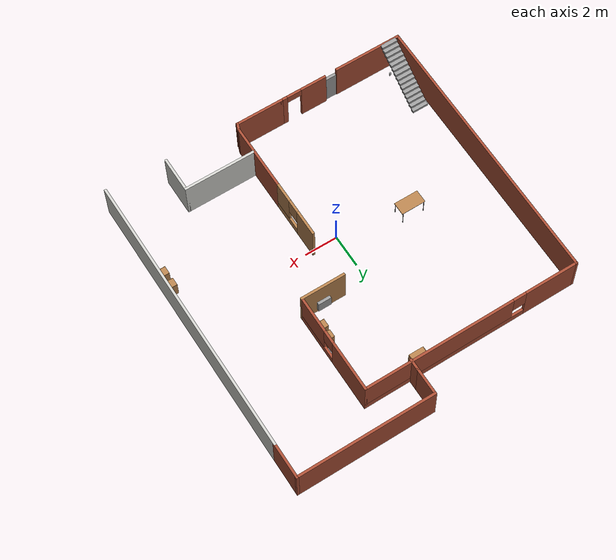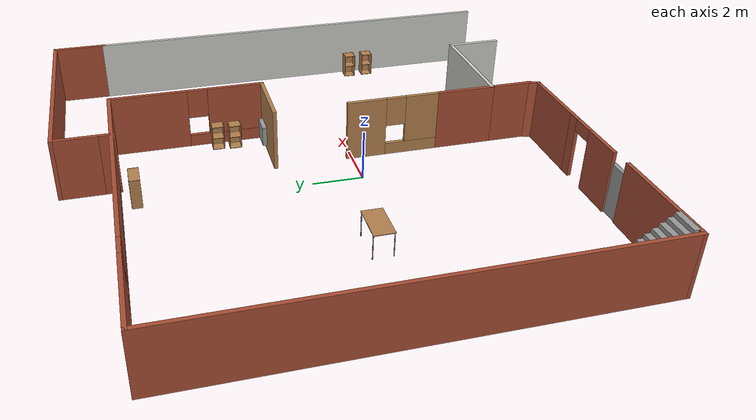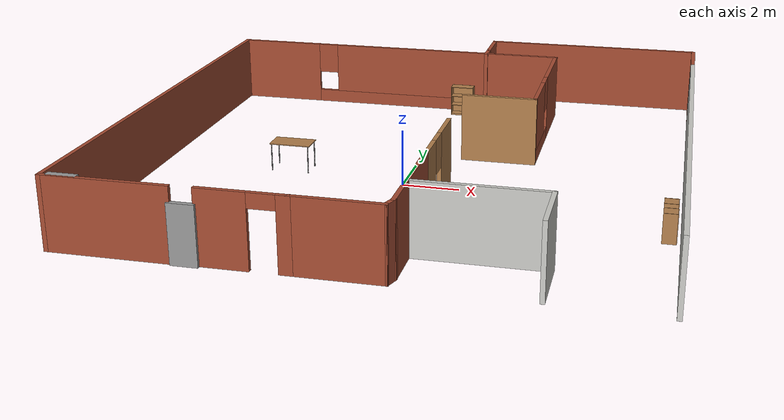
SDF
<sdf version="1.7">
 <world name="default">
  <light name="sun" type="directional">
   <pose>0 0 10 0 -0 0</pose>
   <diffuse>0.8 0.8 0.8 1</diffuse>
   <specular>0.2 0.2 0.2 1</specular>
   <attenuation>
    <range>1000</range>
    <constant>0.9</constant>
    <linear>0.01</linear>
    <quadratic>0.001</quadratic>
   </attenuation>
   <direction>-0.5 0.1 -0.9</direction>
   <spot><inner_angle>0</inner_angle><outer_angle>0</outer_angle><falloff>0</falloff></spot>
  </light>
  <gravity>0 0 -9.8</gravity>
  <magnetic_field>6e-06 2.3e-05 -4.2e-05</magnetic_field>
  <atmosphere type="adiabatic"/>
  <physics type="ode">
   <max_step_size>0.001</max_step_size>
   <real_time_factor>1</real_time_factor>
   <real_time_update_rate>1000</real_time_update_rate>
  </physics>
  <scene><ambient>0.4 0.4 0.4 1</ambient><background>0.7 0.7 0.7 1</background><shadows>1</shadows></scene>
  <audio><device>default</device></audio>
  <spherical_coordinates>
   <surface_model>EARTH_WGS84</surface_model>
   <latitude_deg>0</latitude_deg>
   <longitude_deg>0</longitude_deg>
   <elevation>0</elevation>
   <heading_deg>0</heading_deg>
  </spherical_coordinates>
  <model name="table">
   <static>1</static>
   <link name="link">
    <collision name="surface">
     <pose>0 0 1 0 -0 0</pose>
     <geometry><box><size>1.5 0.8 0.03</size></box></geometry>
     <surface><friction><ode><mu>0.6</mu><mu2>0.6</mu2></ode></friction></surface>
    </collision>
    <visual name="visual1">
     <pose>0 0 1 0 -0 0</pose>
     <geometry><box><size>1.5 0.8 0.03</size></box></geometry>
     <material>
      <script><uri>file://media/materials/scripts/gazebo.material</uri><name>Gazebo/Wood</name></script>
     </material>
    </visual>
    <collision name="front_left_leg">
     <pose>0.68 0.38 0.5 0 -0 0</pose>
     <geometry><cylinder><radius>0.02</radius><length>1</length></cylinder></geometry>
    </collision>
    <visual name="front_left_leg">
     <pose>0.68 0.38 0.5 0 -0 0</pose>
     <geometry><cylinder><radius>0.02</radius><length>1</length></cylinder></geometry>
     <material>
      <script><uri>file://media/materials/scripts/gazebo.material</uri><name>Gazebo/Grey</name></script>
     </material>
    </visual>
    <collision name="front_right_leg">
     <pose>0.68 -0.38 0.5 0 -0 0</pose>
     <geometry><cylinder><radius>0.02</radius><length>1</length></cylinder></geometry>
    </collision>
    <visual name="front_right_leg">
     <pose>0.68 -0.38 0.5 0 -0 0</pose>
     <geometry><cylinder><radius>0.02</radius><length>1</length></cylinder></geometry>
     <material>
      <script><uri>file://media/materials/scripts/gazebo.material</uri><name>Gazebo/Grey</name></script>
     </material>
    </visual>
    <collision name="back_right_leg">
     <pose>-0.68 -0.38 0.5 0 -0 0</pose>
     <geometry><cylinder><radius>0.02</radius><length>1</length></cylinder></geometry>
    </collision>
    <visual name="back_right_leg">
     <pose>-0.68 -0.38 0.5 0 -0 0</pose>
     <geometry><cylinder><radius>0.02</radius><length>1</length></cylinder></geometry>
     <material>
      <script><uri>file://media/materials/scripts/gazebo.material</uri><name>Gazebo/Grey</name></script>
     </material>
    </visual>
    <collision name="back_left_leg">
     <pose>-0.68 0.38 0.5 0 -0 0</pose>
     <geometry><cylinder><radius>0.02</radius><length>1</length></cylinder></geometry>
    </collision>
    <visual name="back_left_leg">
     <pose>-0.68 0.38 0.5 0 -0 0</pose>
     <geometry><cylinder><radius>0.02</radius><length>1</length></cylinder></geometry>
     <material>
      <script><uri>file://media/materials/scripts/gazebo.material</uri><name>Gazebo/Grey</name></script>
     </material>
    </visual>
   </link>
   <pose>-4.2921 0.778293 0 0 -0 0</pose>
  </model>
  <model name="World1_gazebo">
   <pose>0.217803 1.63189 0 0 -0 0</pose>
   <link name="Door_0">
    <collision name="Door_0_Collision">
     <geometry><box><size>0.9 0.17 2</size></box></geometry>
     <pose>0 0 1 0 -0 0</pose>
    </collision>
    <visual name="Door_0_Visual">
     <pose>0 0 1 0 -0 0</pose>
     <geometry><box><size>0.9 0.17 2</size></box></geometry>
     <material>
      <script><uri>file://media/materials/scripts/gazebo.material</uri><name>Gazebo/Grey</name></script>
     </material>
    </visual>
    <pose>-4.89109 -9.5593 0 0 -0 0</pose>
   </link>
   <link name="Stairs_0">
    <visual name="Stairs_0_Visual_0">
     <pose>-8.74415 -6.12162 0.083333 0 -0 0</pose>
     <geometry><box><size>1 0.233333 0.166667</size></box></geometry>
     <material>
      <script><uri>file://media/materials/scripts/gazebo.material</uri><name>Gazebo/Grey</name></script>
      <ambient>1 1 1 1</ambient>
     </material>
     <meta><layer>0</layer></meta>
    </visual>
    <collision name="Stairs_0_Collision_0">
     <geometry><box><size>1 0.233333 0.166667</size></box></geometry>
     <pose>-8.74415 -6.12162 0.083333 0 -0 0</pose>
    </collision>
    <visual name="Stairs_0_Visual_1">
     <pose>-8.74415 -6.35496 0.25 0 -0 0</pose>
     <geometry><box><size>1 0.233333 0.166667</size></box></geometry>
     <material>
      <script><uri>file://media/materials/scripts/gazebo.material</uri><name>Gazebo/Grey</name></script>
      <ambient>1 1 1 1</ambient>
     </material>
     <meta><layer>0</layer></meta>
    </visual>
    <collision name="Stairs_0_Collision_1">
     <geometry><box><size>1 0.233333 0.166667</size></box></geometry>
     <pose>-8.74415 -6.35496 0.25 0 -0 0</pose>
    </collision>
    <visual name="Stairs_0_Visual_2">
     <pose>-8.74415 -6.58829 0.416667 0 -0 0</pose>
     <geometry><box><size>1 0.233333 0.166667</size></box></geometry>
     <material>
      <script><uri>file://media/materials/scripts/gazebo.material</uri><name>Gazebo/Grey</name></script>
      <ambient>1 1 1 1</ambient>
     </material>
     <meta><layer>0</layer></meta>
    </visual>
    <collision name="Stairs_0_Collision_2">
     <geometry><box><size>1 0.233333 0.166667</size></box></geometry>
     <pose>-8.74415 -6.58829 0.416667 0 -0 0</pose>
    </collision>
    <visual name="Stairs_0_Visual_3">
     <pose>-8.74415 -6.82162 0.583333 0 -0 0</pose>
     <geometry><box><size>1 0.233333 0.166667</size></box></geometry>
     <material>
      <script><uri>file://media/materials/scripts/gazebo.material</uri><name>Gazebo/Grey</name></script>
      <ambient>1 1 1 1</ambient>
     </material>
     <meta><layer>0</layer></meta>
    </visual>
    <collision name="Stairs_0_Collision_3">
     <geometry><box><size>1 0.233333 0.166667</size></box></geometry>
     <pose>-8.74415 -6.82162 0.583333 0 -0 0</pose>
    </collision>
    <visual name="Stairs_0_Visual_4">
     <pose>-8.74415 -7.05495 0.75 0 -0 0</pose>
     <geometry><box><size>1 0.233333 0.166667</size></box></geometry>
     <material>
      <script><uri>file://media/materials/scripts/gazebo.material</uri><name>Gazebo/Grey</name></script>
      <ambient>1 1 1 1</ambient>
     </material>
     <meta><layer>0</layer></meta>
    </visual>
    <collision name="Stairs_0_Collision_4">
     <geometry><box><size>1 0.233333 0.166667</size></box></geometry>
     <pose>-8.74415 -7.05495 0.75 0 -0 0</pose>
    </collision>
    <visual name="Stairs_0_Visual_5">
     <pose>-8.74415 -7.28829 0.916667 0 -0 0</pose>
     <geometry><box><size>1 0.233333 0.166667</size></box></geometry>
     <material>
      <script><uri>file://media/materials/scripts/gazebo.material</uri><name>Gazebo/Grey</name></script>
      <ambient>1 1 1 1</ambient>
     </material>
     <meta><layer>0</layer></meta>
    </visual>
    <collision name="Stairs_0_Collision_5">
     <geometry><box><size>1 0.233333 0.166667</size></box></geometry>
     <pose>-8.74415 -7.28829 0.916667 0 -0 0</pose>
    </collision>
    <visual name="Stairs_0_Visual_6">
     <pose>-8.74415 -7.52162 1.08333 0 -0 0</pose>
     <geometry><box><size>1 0.233333 0.166667</size></box></geometry>
     <material>
      <script><uri>file://media/materials/scripts/gazebo.material</uri><name>Gazebo/Grey</name></script>
      <ambient>1 1 1 1</ambient>
     </material>
     <meta><layer>0</layer></meta>
    </visual>
    <collision name="Stairs_0_Collision_6">
     <geometry><box><size>1 0.233333 0.166667</size></box></geometry>
     <pose>-8.74415 -7.52162 1.08333 0 -0 0</pose>
    </collision>
    <visual name="Stairs_0_Visual_7">
     <pose>-8.74415 -7.75495 1.25 0 -0 0</pose>
     <geometry><box><size>1 0.233333 0.166667</size></box></geometry>
     <material>
      <script><uri>file://media/materials/scripts/gazebo.material</uri><name>Gazebo/Grey</name></script>
      <ambient>1 1 1 1</ambient>
     </material>
     <meta><layer>0</layer></meta>
    </visual>
    <collision name="Stairs_0_Collision_7">
     <geometry><box><size>1 0.233333 0.166667</size></box></geometry>
     <pose>-8.74415 -7.75495 1.25 0 -0 0</pose>
    </collision>
    <visual name="Stairs_0_Visual_8">
     <pose>-8.74415 -7.98829 1.41667 0 -0 0</pose>
     <geometry><box><size>1 0.233333 0.166667</size></box></geometry>
     <material>
      <script><uri>file://media/materials/scripts/gazebo.material</uri><name>Gazebo/Grey</name></script>
      <ambient>1 1 1 1</ambient>
     </material>
     <meta><layer>0</layer></meta>
    </visual>
    <collision name="Stairs_0_Collision_8">
     <geometry><box><size>1 0.233333 0.166667</size></box></geometry>
     <pose>-8.74415 -7.98829 1.41667 0 -0 0</pose>
    </collision>
    <visual name="Stairs_0_Visual_9">
     <pose>-8.74415 -8.22162 1.58333 0 -0 0</pose>
     <geometry><box><size>1 0.233333 0.166667</size></box></geometry>
     <material>
      <script><uri>file://media/materials/scripts/gazebo.material</uri><name>Gazebo/Grey</name></script>
      <ambient>1 1 1 1</ambient>
     </material>
     <meta><layer>0</layer></meta>
    </visual>
    <collision name="Stairs_0_Collision_9">
     <geometry><box><size>1 0.233333 0.166667</size></box></geometry>
     <pose>-8.74415 -8.22162 1.58333 0 -0 0</pose>
    </collision>
    <visual name="Stairs_0_Visual_10">
     <pose>-8.74415 -8.45495 1.75 0 -0 0</pose>
     <geometry><box><size>1 0.233333 0.166667</size></box></geometry>
     <material>
      <script><uri>file://media/materials/scripts/gazebo.material</uri><name>Gazebo/Grey</name></script>
      <ambient>1 1 1 1</ambient>
     </material>
     <meta><layer>0</layer></meta>
    </visual>
    <collision name="Stairs_0_Collision_10">
     <geometry><box><size>1 0.233333 0.166667</size></box></geometry>
     <pose>-8.74415 -8.45495 1.75 0 -0 0</pose>
    </collision>
    <visual name="Stairs_0_Visual_11">
     <pose>-8.74415 -8.68829 1.91667 0 -0 0</pose>
     <geometry><box><size>1 0.233333 0.166667</size></box></geometry>
     <material>
      <script><uri>file://media/materials/scripts/gazebo.material</uri><name>Gazebo/Grey</name></script>
      <ambient>1 1 1 1</ambient>
     </material>
     <meta><layer>0</layer></meta>
    </visual>
    <collision name="Stairs_0_Collision_11">
     <geometry><box><size>1 0.233333 0.166667</size></box></geometry>
     <pose>-8.74415 -8.68829 1.91667 0 -0 0</pose>
    </collision>
    <visual name="Stairs_0_Visual_12">
     <pose>-8.74415 -8.92162 2.08333 0 -0 0</pose>
     <geometry><box><size>1 0.233333 0.166667</size></box></geometry>
     <material>
      <script><uri>file://media/materials/scripts/gazebo.material</uri><name>Gazebo/Grey</name></script>
      <ambient>1 1 1 1</ambient>
     </material>
     <meta><layer>0</layer></meta>
    </visual>
    <collision name="Stairs_0_Collision_12">
     <geometry><box><size>1 0.233333 0.166667</size></box></geometry>
     <pose>-8.74415 -8.92162 2.08333 0 -0 0</pose>
    </collision>
    <visual name="Stairs_0_Visual_13">
     <pose>-8.74415 -9.15495 2.25 0 -0 0</pose>
     <geometry><box><size>1 0.233333 0.166667</size></box></geometry>
     <material>
      <script><uri>file://media/materials/scripts/gazebo.material</uri><name>Gazebo/Grey</name></script>
      <ambient>1 1 1 1</ambient>
     </material>
     <meta><layer>0</layer></meta>
    </visual>
    <collision name="Stairs_0_Collision_13">
     <geometry><box><size>1 0.233333 0.166667</size></box></geometry>
     <pose>-8.74415 -9.15495 2.25 0 -0 0</pose>
    </collision>
    <visual name="Stairs_0_Visual_14">
     <pose>-8.74415 -9.38829 2.41667 0 -0 0</pose>
     <geometry><box><size>1 0.233333 0.166667</size></box></geometry>
     <material>
      <script><uri>file://media/materials/scripts/gazebo.material</uri><name>Gazebo/Grey</name></script>
      <ambient>1 1 1 1</ambient>
     </material>
     <meta><layer>0</layer></meta>
    </visual>
    <collision name="Stairs_0_Collision_14">
     <geometry><box><size>1 0.233333 0.166667</size></box></geometry>
     <pose>-8.74415 -9.38829 2.41667 0 -0 0</pose>
    </collision>
   </link>
   <link name="Wall_10">
    <collision name="Wall_10_Collision">
     <geometry><box><size>4.25 0.15 2.5</size></box></geometry>
     <pose>0 0 1.25 0 -0 0</pose>
    </collision>
    <visual name="Wall_10_Visual">
     <pose>0 0 1.25 0 -0 0</pose>
     <geometry><box><size>4.25 0.15 2.5</size></box></geometry>
     <material>
      <script><uri>file://media/materials/scripts/gazebo.material</uri><name>Gazebo/Bricks</name></script>
      <ambient>0 0 0 1</ambient>
     </material>
     <meta><layer>0</layer></meta>
    </visual>
    <pose>-7.36911 -9.5058 0 0 -0 3.14159</pose>
   </link>
   <link name="Wall_11">
    <collision name="Wall_11_Collision">
     <geometry><box><size>17.25 0.15 2.5</size></box></geometry>
     <pose>0 0 1.25 0 -0 0</pose>
    </collision>
    <visual name="Wall_11_Visual">
     <pose>0 0 1.25 0 -0 0</pose>
     <geometry><box><size>17.25 0.15 2.5</size></box></geometry>
     <material>
      <script><uri>file://media/materials/scripts/gazebo.material</uri><name>Gazebo/Bricks</name></script>
      <ambient>0.435294 0.796078 0.67451 1</ambient>
     </material>
     <meta><layer>0</layer></meta>
    </visual>
    <pose>-9.41911 -0.955797 0 0 -0 1.5708</pose>
   </link>
   <link name="Wall_12">
    <pose>-2.74411 7.5942 0 0 -0 0</pose>
    <visual name="Wall_12_Visual_0">
     <pose>-5.07651 0 1.25 0 -0 0</pose>
     <geometry><box><size>3.34698 0.15 2.5</size></box></geometry>
     <material>
      <script><uri>file://media/materials/scripts/gazebo.material</uri><name>Gazebo/Bricks</name></script>
      <ambient>0.929412 0.2 0.231373 1</ambient>
     </material>
     <meta><layer>0</layer></meta>
    </visual>
    <collision name="Wall_12_Collision_0">
     <geometry><box><size>3.34698 0.15 2.5</size></box></geometry>
     <pose>-5.07651 0 1.25 0 -0 0</pose>
    </collision>
    <visual name="Wall_12_Visual_1">
     <pose>1.67349 0 0.25 0 -0 0</pose>
     <geometry><box><size>10.153 0.15 0.5</size></box></geometry>
     <material>
      <script><uri>file://media/materials/scripts/gazebo.material</uri><name>Gazebo/Bricks</name></script>
      <ambient>0.929412 0.2 0.231373 1</ambient>
     </material>
     <meta><layer>0</layer></meta>
    </visual>
    <collision name="Wall_12_Collision_1">
     <geometry><box><size>10.153 0.15 0.5</size></box></geometry>
     <pose>1.67349 0 0.25 0 -0 0</pose>
    </collision>
    <visual name="Wall_12_Visual_2">
     <pose>2.07349 0 1.5 0 -0 0</pose>
     <geometry><box><size>9.35302 0.15 2</size></box></geometry>
     <material>
      <script><uri>file://media/materials/scripts/gazebo.material</uri><name>Gazebo/Bricks</name></script>
      <ambient>0.929412 0.2 0.231373 1</ambient>
     </material>
     <meta><layer>0</layer></meta>
    </visual>
    <collision name="Wall_12_Collision_2">
     <geometry><box><size>9.35302 0.15 2</size></box></geometry>
     <pose>2.07349 0 1.5 0 -0 0</pose>
    </collision>
    <visual name="Wall_12_Visual_3">
     <pose>-3.00302 0 1.9 0 -0 0</pose>
     <geometry><box><size>0.8 0.15 1.2</size></box></geometry>
     <material>
      <script><uri>file://media/materials/scripts/gazebo.material</uri><name>Gazebo/Bricks</name></script>
      <ambient>0.929412 0.2 0.231373 1</ambient>
     </material>
     <meta><layer>0</layer></meta>
    </visual>
    <collision name="Wall_12_Collision_3">
     <geometry><box><size>0.8 0.15 1.2</size></box></geometry>
     <pose>-3.00302 0 1.9 0 -0 0</pose>
    </collision>
   </link>
   <link name="Wall_13">
    <pose>3.93089 4.5442 0 0 -0 -1.5708</pose>
    <visual name="Wall_13_Visual_0">
     <pose>-1.55907 0 1.25 0 -0 0</pose>
     <geometry><box><size>3.13186 0.15 2.5</size></box></geometry>
     <material>
      <script><uri>file://media/materials/scripts/gazebo.material</uri><name>Gazebo/Bricks</name></script>
      <ambient>0.929412 0.2 0.231373 1</ambient>
     </material>
     <meta><layer>0</layer></meta>
    </visual>
    <collision name="Wall_13_Collision_0">
     <geometry><box><size>3.13186 0.15 2.5</size></box></geometry>
     <pose>-1.55907 0 1.25 0 -0 0</pose>
    </collision>
    <visual name="Wall_13_Visual_1">
     <pose>1.56593 0 0.25 0 -0 0</pose>
     <geometry><box><size>3.11814 0.15 0.5</size></box></geometry>
     <material>
      <script><uri>file://media/materials/scripts/gazebo.material</uri><name>Gazebo/Bricks</name></script>
      <ambient>0.929412 0.2 0.231373 1</ambient>
     </material>
     <meta><layer>0</layer></meta>
    </visual>
    <collision name="Wall_13_Collision_1">
     <geometry><box><size>3.11814 0.15 0.5</size></box></geometry>
     <pose>1.56593 0 0.25 0 -0 0</pose>
    </collision>
    <visual name="Wall_13_Visual_2">
     <pose>1.96593 0 1.5 0 -0 0</pose>
     <geometry><box><size>2.31814 0.15 2</size></box></geometry>
     <material>
      <script><uri>file://media/materials/scripts/gazebo.material</uri><name>Gazebo/Bricks</name></script>
      <ambient>0.929412 0.2 0.231373 1</ambient>
     </material>
     <meta><layer>0</layer></meta>
    </visual>
    <collision name="Wall_13_Collision_2">
     <geometry><box><size>2.31814 0.15 2</size></box></geometry>
     <pose>1.96593 0 1.5 0 -0 0</pose>
    </collision>
    <visual name="Wall_13_Visual_3">
     <pose>0.406862 0 1.9 0 -0 0</pose>
     <geometry><box><size>0.8 0.15 1.2</size></box></geometry>
     <material>
      <script><uri>file://media/materials/scripts/gazebo.material</uri><name>Gazebo/Bricks</name></script>
      <ambient>0.929412 0.2 0.231373 1</ambient>
     </material>
     <meta><layer>0</layer></meta>
    </visual>
    <collision name="Wall_13_Collision_3">
     <geometry><box><size>0.8 0.15 1.2</size></box></geometry>
     <pose>0.406862 0 1.9 0 -0 0</pose>
    </collision>
   </link>
   <link name="Wall_14">
    <collision name="Wall_14_Collision">
     <geometry><box><size>2.75 0.15 2.5</size></box></geometry>
     <pose>0 0 1.25 0 -0 0</pose>
    </collision>
    <visual name="Wall_14_Visual">
     <pose>0 0 1.25 0 -0 0</pose>
     <geometry><box><size>2.75 0.15 2.5</size></box></geometry>
     <material>
      <script><uri>file://media/materials/scripts/gazebo.material</uri><name>Gazebo/Wood</name></script>
      <ambient>0.101961 0.372549 0.705882 1</ambient>
     </material>
     <meta><layer>0</layer></meta>
    </visual>
    <pose>2.63089 1.4942 0 0 -0 3.14159</pose>
   </link>
   <link name="Wall_16">
    <pose>1.3687 -3.28042 0 0 -0 -1.5708</pose>
    <visual name="Wall_16_Visual_0">
     <pose>-1.07445 0 1.25 0 -0 0</pose>
     <geometry><box><size>1.60109 0.15 2.5</size></box></geometry>
     <material>
      <script><uri>file://media/materials/scripts/gazebo.material</uri><name>Gazebo/Wood</name></script>
      <ambient>0.101961 0.372549 0.705882 1</ambient>
     </material>
     <meta><layer>0</layer></meta>
    </visual>
    <collision name="Wall_16_Collision_0">
     <geometry><box><size>1.60109 0.15 2.5</size></box></geometry>
     <pose>-1.07445 0 1.25 0 -0 0</pose>
    </collision>
    <visual name="Wall_16_Visual_1">
     <pose>0.800545 0 0.25 0 -0 0</pose>
     <geometry><box><size>2.14891 0.15 0.5</size></box></geometry>
     <material>
      <script><uri>file://media/materials/scripts/gazebo.material</uri><name>Gazebo/Wood</name></script>
      <ambient>0.101961 0.372549 0.705882 1</ambient>
     </material>
     <meta><layer>0</layer></meta>
    </visual>
    <collision name="Wall_16_Collision_1">
     <geometry><box><size>2.14891 0.15 0.5</size></box></geometry>
     <pose>0.800545 0 0.25 0 -0 0</pose>
    </collision>
    <visual name="Wall_16_Visual_2">
     <pose>1.20054 0 1.5 0 -0 0</pose>
     <geometry><box><size>1.34891 0.15 2</size></box></geometry>
     <material>
      <script><uri>file://media/materials/scripts/gazebo.material</uri><name>Gazebo/Wood</name></script>
      <ambient>0.101961 0.372549 0.705882 1</ambient>
     </material>
     <meta><layer>0</layer></meta>
    </visual>
    <collision name="Wall_16_Collision_2">
     <geometry><box><size>1.34891 0.15 2</size></box></geometry>
     <pose>1.20054 0 1.5 0 -0 0</pose>
    </collision>
    <visual name="Wall_16_Visual_3">
     <pose>0.12609 0 1.9 0 -0 0</pose>
     <geometry><box><size>0.8 0.15 1.2</size></box></geometry>
     <material>
      <script><uri>file://media/materials/scripts/gazebo.material</uri><name>Gazebo/Wood</name></script>
      <ambient>0.101961 0.372549 0.705882 1</ambient>
     </material>
     <meta><layer>0</layer></meta>
    </visual>
    <collision name="Wall_16_Collision_3">
     <geometry><box><size>0.8 0.15 1.2</size></box></geometry>
     <pose>0.12609 0 1.9 0 -0 0</pose>
    </collision>
   </link>
   <link name="Wall_19">
    <collision name="Wall_19_Collision">
     <geometry><box><size>1.75 0.15 2.5</size></box></geometry>
     <pose>0 0 1.25 0 -0 0</pose>
    </collision>
    <visual name="Wall_19_Visual">
     <pose>0 0 1.25 0 -0 0</pose>
     <geometry><box><size>1.75 0.15 2.5</size></box></geometry>
     <material>
      <script><uri>file://media/materials/scripts/gazebo.material</uri><name>Gazebo/Bricks</name></script>
      <ambient>0 0 0 1</ambient>
     </material>
     <meta><layer>0</layer></meta>
    </visual>
    <pose>1.3687 -8.2727 0 0 -0 -1.5708</pose>
   </link>
   <link name="Wall_22">
    <pose>-3.03391 -9.46116 0 0 -0 0</pose>
    <visual name="Wall_22_Visual_0">
     <pose>-0.676111 0 1.25 0 -0 0</pose>
     <geometry><box><size>1.64778 0.15 2.5</size></box></geometry>
     <material>
      <script><uri>file://media/materials/scripts/gazebo.material</uri><name>Gazebo/Bricks</name></script>
      <ambient>0 0 0 1</ambient>
     </material>
     <meta><layer>0</layer></meta>
    </visual>
    <collision name="Wall_22_Collision_0">
     <geometry><box><size>1.64778 0.15 2.5</size></box></geometry>
     <pose>-0.676111 0 1.25 0 -0 0</pose>
    </collision>
    <visual name="Wall_22_Visual_1">
     <pose>1.27389 0 1.25 0 -0 0</pose>
     <geometry><box><size>0.452221 0.15 2.5</size></box></geometry>
     <material>
      <script><uri>file://media/materials/scripts/gazebo.material</uri><name>Gazebo/Bricks</name></script>
      <ambient>0 0 0 1</ambient>
     </material>
     <meta><layer>0</layer></meta>
    </visual>
    <collision name="Wall_22_Collision_1">
     <geometry><box><size>0.452221 0.15 2.5</size></box></geometry>
     <pose>1.27389 0 1.25 0 -0 0</pose>
    </collision>
    <visual name="Wall_22_Visual_2">
     <pose>0.597779 0 2.25 0 -0 0</pose>
     <geometry><box><size>0.9 0.15 0.5</size></box></geometry>
     <material>
      <script><uri>file://media/materials/scripts/gazebo.material</uri><name>Gazebo/Bricks</name></script>
      <ambient>0 0 0 1</ambient>
     </material>
     <meta><layer>0</layer></meta>
    </visual>
    <collision name="Wall_22_Collision_2">
     <geometry><box><size>0.9 0.15 0.5</size></box></geometry>
     <pose>0.597779 0 2.25 0 -0 0</pose>
    </collision>
   </link>
   <link name="Wall_24">
    <collision name="Wall_24_Collision">
     <geometry><box><size>3 0.15 2.5</size></box></geometry>
     <pose>0 0 1.25 0 -0 0</pose>
    </collision>
    <visual name="Wall_24_Visual">
     <pose>0 0 1.25 0 -0 0</pose>
     <geometry><box><size>3 0.15 2.5</size></box></geometry>
     <material>
      <script><uri>file://media/materials/scripts/gazebo.material</uri><name>Gazebo/Bricks</name></script>
      <ambient>0 0 0 1</ambient>
     </material>
     <meta><layer>0</layer></meta>
    </visual>
    <pose>-0.18391 -9.46116 0 0 -0 0</pose>
   </link>
   <link name="Wall_25">
    <collision name="Wall_25_Collision">
     <geometry><box><size>0.55888 0.15 2.5</size></box></geometry>
     <pose>0 0 1.25 0 -0 0</pose>
    </collision>
    <visual name="Wall_25_Visual">
     <pose>0 0 1.25 0 -0 0</pose>
     <geometry><box><size>0.55888 0.15 2.5</size></box></geometry>
     <material>
      <script><uri>file://media/materials/scripts/gazebo.material</uri><name>Gazebo/Bricks</name></script>
      <ambient>0 0 0 1</ambient>
     </material>
     <meta><layer>0</layer></meta>
    </visual>
    <pose>1.30489 -9.26693 0 0 -0 1.2534</pose>
   </link>
   <link name="Wall_27">
    <collision name="Wall_27_Collision">
     <geometry><box><size>2.54228 0.15 2.5</size></box></geometry>
     <pose>0 0 1.25 0 -0 0</pose>
    </collision>
    <visual name="Wall_27_Visual">
     <pose>0 0 1.25 0 -0 0</pose>
     <geometry><box><size>2.54228 0.15 2.5</size></box></geometry>
     <material>
      <script><uri>file://media/materials/scripts/gazebo.material</uri><name>Gazebo/Bricks</name></script>
      <ambient>1 1 1 1</ambient>
     </material>
     <meta><layer>0</layer></meta>
    </visual>
    <pose>1.3687 -6.27656 0 0 -0 -1.5708</pose>
   </link>
   <link name="Wall_28">
    <collision name="Wall_28_Collision">
     <geometry><box><size>4.5 0.15 2.5</size></box></geometry>
     <pose>0 0 1.25 0 -0 0</pose>
    </collision>
    <visual name="Wall_28_Visual">
     <pose>0 0 1.25 0 -0 0</pose>
     <geometry><box><size>4.5 0.15 2.5</size></box></geometry>
     <material>
      <script><uri>file://media/materials/scripts/gazebo.material</uri><name>Gazebo/CeilingTiled</name></script>
      <ambient>0.898039 0.647059 0.0392157 1</ambient>
     </material>
     <meta><layer>0</layer></meta>
    </visual>
    <pose>3.5437 -7.4727 0 0 -0 0</pose>
   </link>
   <link name="Wall_29">
    <collision name="Wall_29_Collision">
     <geometry><box><size>2.25 0.15 2.5</size></box></geometry>
     <pose>0 0 1.25 0 -0 0</pose>
    </collision>
    <visual name="Wall_29_Visual">
     <pose>0 0 1.25 0 -0 0</pose>
     <geometry><box><size>2.25 0.15 2.5</size></box></geometry>
     <material>
      <script><uri>file://media/materials/scripts/gazebo.material</uri><name>Gazebo/CeilingTiled</name></script>
      <ambient>0.898039 0.647059 0.0392157 1</ambient>
     </material>
     <meta><layer>0</layer></meta>
    </visual>
    <pose>5.7187 -8.5227 0 0 -0 -1.5708</pose>
   </link>
   <link name="Wall_31">
    <collision name="Wall_31_Collision">
     <geometry><box><size>17.5 0.15 2.5</size></box></geometry>
     <pose>0 0 1.25 0 -0 0</pose>
    </collision>
    <visual name="Wall_31_Visual">
     <pose>0 0 1.25 0 -0 0</pose>
     <geometry><box><size>17.5 0.15 2.5</size></box></geometry>
     <material>
      <script><uri>file://media/materials/scripts/gazebo.material</uri><name>Gazebo/CeilingTiled</name></script>
      <ambient>1 1 1 1</ambient>
     </material>
     <meta><layer>0</layer></meta>
    </visual>
    <pose>9.41911 -1.05 0 0 -0 1.5708</pose>
   </link>
   <link name="Wall_32">
    <collision name="Wall_32_Collision">
     <geometry><box><size>2.25 0.15 2.5</size></box></geometry>
     <pose>0 0 1.25 0 -0 0</pose>
    </collision>
    <visual name="Wall_32_Visual">
     <pose>0 0 1.25 0 -0 0</pose>
     <geometry><box><size>2.25 0.15 2.5</size></box></geometry>
     <material>
      <script><uri>file://media/materials/scripts/gazebo.material</uri><name>Gazebo/Bricks</name></script>
      <ambient>1 1 1 1</ambient>
     </material>
     <meta><layer>0</layer></meta>
    </visual>
    <pose>9.41911 8.675 0 0 -0 1.5708</pose>
   </link>
   <link name="Wall_33">
    <collision name="Wall_33_Collision">
     <geometry><box><size>8.5 0.15 2.5</size></box></geometry>
     <pose>0 0 1.25 0 -0 0</pose>
    </collision>
    <visual name="Wall_33_Visual">
     <pose>0 0 1.25 0 -0 0</pose>
     <geometry><box><size>8.5 0.15 2.5</size></box></geometry>
     <material>
      <script><uri>file://media/materials/scripts/gazebo.material</uri><name>Gazebo/Bricks</name></script>
      <ambient>0.752941 0.380392 0.796078 1</ambient>
     </material>
     <meta><layer>0</layer></meta>
    </visual>
    <pose>5.24411 9.725 0 0 -0 3.14159</pose>
   </link>
   <link name="Wall_34">
    <collision name="Wall_34_Collision">
     <geometry><box><size>1.75 0.15 2.5</size></box></geometry>
     <pose>0 0 1.25 0 -0 0</pose>
    </collision>
    <visual name="Wall_34_Visual">
     <pose>0 0 1.25 0 -0 0</pose>
     <geometry><box><size>1.75 0.15 2.5</size></box></geometry>
     <material>
      <script><uri>file://media/materials/scripts/gazebo.material</uri><name>Gazebo/Bricks</name></script>
      <ambient>1 1 1 1</ambient>
     </material>
     <meta><layer>0</layer></meta>
    </visual>
    <pose>1.06911 8.925 0 0 -0 -1.5708</pose>
   </link>
   <link name="Wall_35">
    <collision name="Wall_35_Collision">
     <geometry><box><size>0.75 0.15 2.5</size></box></geometry>
     <pose>0 0 1.25 0 -0 0</pose>
    </collision>
    <visual name="Wall_35_Visual">
     <pose>0 0 1.25 0 -0 0</pose>
     <geometry><box><size>0.75 0.15 2.5</size></box></geometry>
     <material>
      <script><uri>file://media/materials/scripts/gazebo.material</uri><name>Gazebo/Bricks</name></script>
      <ambient>1 1 1 1</ambient>
     </material>
     <meta><layer>0</layer></meta>
    </visual>
    <pose>1.06911 7.825 0 0 -0 -1.5708</pose>
   </link>
   <link name="Window_0">
    <collision name="Window_0_Collision">
     <geometry><box><size>0.8 0.17 0.8</size></box></geometry>
     <pose>0 0 0.4 0 -0 0</pose>
    </collision>
    <visual name="Window_0_Visual">
     <pose>0 0 0.4 0 -0 0</pose>
     <geometry><box><size>0.8 0.17 0.8</size></box></geometry>
     <material>
      <script><uri>file://media/materials/scripts/gazebo.material</uri><name>Gazebo/Grey</name></script>
     </material>
    </visual>
    <pose>2.70626 1.72973 0.5 0 -0 0</pose>
   </link>
   <static>1</static>
  </model>
  <model name="cabinet">
   <static>1</static>
   <link name="cabinet_bottom_plate">
    <inertial>
     <pose>0 0 -1 0 -0 0</pose>
     <inertia><ixx>2.05</ixx><ixy>0</ixy><ixz>0</ixz><iyy>2.05</iyy><iyz>0</iyz><izz>2.05</izz></inertia>
     <mass>25</mass>
    </inertial>
    <collision name="cabinet_bottom_plate_geom">
     <pose>0 0 0.01 0 -0 0</pose>
     <geometry><box><size>0.45 0.45 0.02</size></box></geometry>
    </collision>
    <visual name="cabinet_bottom_plate_geom_visual">
     <pose>0 0 0.01 0 -0 0</pose>
     <geometry><box><size>0.45 0.45 0.02</size></box></geometry>
     <material>
      <script><uri>file://media/materials/scripts/gazebo.material</uri><name>Gazebo/Wood</name></script>
     </material>
    </visual>
    <collision name="cabinet_bottom_plate_geom_cabinet_back_plate">
     <pose>0.235 0 0.51 0 -0 0</pose>
     <geometry><box><size>0.02 0.45 1.02</size></box></geometry>
    </collision>
    <visual name="cabinet_bottom_plate_geom_cabinet_back_plate_visual">
     <pose>0.235 0 0.51 0 -0 0</pose>
     <geometry><box><size>0.02 0.45 1.02</size></box></geometry>
     <material>
      <script><uri>file://media/materials/scripts/gazebo.material</uri><name>Gazebo/Wood</name></script>
     </material>
    </visual>
    <collision name="cabinet_bottom_plate_geom_cabinet_left_plate">
     <pose>0 0.235 0.51 0 -0 0</pose>
     <geometry><box><size>0.45 0.02 1.02</size></box></geometry>
    </collision>
    <visual name="cabinet_bottom_plate_geom_cabinet_left_plate_visual">
     <pose>0 0.235 0.51 0 -0 0</pose>
     <geometry><box><size>0.45 0.02 1.02</size></box></geometry>
     <material>
      <script><uri>file://media/materials/scripts/gazebo.material</uri><name>Gazebo/Wood</name></script>
     </material>
    </visual>
    <collision name="cabinet_bottom_plate_geom_cabinet_middle_plate">
     <pose>0 0 0.51 0 -0 0</pose>
     <geometry><box><size>0.45 0.45 0.02</size></box></geometry>
    </collision>
    <visual name="cabinet_bottom_plate_geom_cabinet_middle_plate_visual">
     <pose>0 0 0.51 0 -0 0</pose>
     <geometry><box><size>0.45 0.45 0.02</size></box></geometry>
     <material>
      <script><uri>file://media/materials/scripts/gazebo.material</uri><name>Gazebo/Wood</name></script>
     </material>
    </visual>
    <collision name="cabinet_bottom_plate_geom_cabinet_right_plate">
     <pose>0 -0.235 0.51 0 -0 0</pose>
     <geometry><box><size>0.45 0.02 1.02</size></box></geometry>
    </collision>
    <visual name="cabinet_bottom_plate_geom_cabinet_right_plate_visual">
     <pose>0 -0.235 0.51 0 -0 0</pose>
     <geometry><box><size>0.45 0.02 1.02</size></box></geometry>
     <material>
      <script><uri>file://media/materials/scripts/gazebo.material</uri><name>Gazebo/Wood</name></script>
     </material>
    </visual>
    <collision name="cabinet_bottom_plate_geom_cabinet_top_plate">
     <pose>0 0 1.01 0 -0 0</pose>
     <geometry><box><size>0.45 0.45 0.02</size></box></geometry>
    </collision>
    <visual name="cabinet_bottom_plate_geom_cabinet_top_plate_visual">
     <pose>0 0 1.01 0 -0 0</pose>
     <geometry><box><size>0.45 0.45 0.02</size></box></geometry>
     <material>
      <script><uri>file://media/materials/scripts/gazebo.material</uri><name>Gazebo/Wood</name></script>
     </material>
    </visual>
   </link>
   <pose>3.68591 4.40689 0 0 -0 0</pose>
  </model>
  <model name="cabinet_0">
   <static>1</static>
   <link name="cabinet_bottom_plate">
    <inertial>
     <pose>0 0 -1 0 -0 0</pose>
     <inertia><ixx>2.05</ixx><ixy>0</ixy><ixz>0</ixz><iyy>2.05</iyy><iyz>0</iyz><izz>2.05</izz></inertia>
     <mass>25</mass>
    </inertial>
    <collision name="cabinet_bottom_plate_geom">
     <pose>0 0 0.01 0 -0 0</pose>
     <geometry><box><size>0.45 0.45 0.02</size></box></geometry>
    </collision>
    <visual name="cabinet_bottom_plate_geom_visual">
     <pose>0 0 0.01 0 -0 0</pose>
     <geometry><box><size>0.45 0.45 0.02</size></box></geometry>
     <material>
      <script><uri>file://media/materials/scripts/gazebo.material</uri><name>Gazebo/Wood</name></script>
     </material>
    </visual>
    <collision name="cabinet_bottom_plate_geom_cabinet_back_plate">
     <pose>0.235 0 0.51 0 -0 0</pose>
     <geometry><box><size>0.02 0.45 1.02</size></box></geometry>
    </collision>
    <visual name="cabinet_bottom_plate_geom_cabinet_back_plate_visual">
     <pose>0.235 0 0.51 0 -0 0</pose>
     <geometry><box><size>0.02 0.45 1.02</size></box></geometry>
     <material>
      <script><uri>file://media/materials/scripts/gazebo.material</uri><name>Gazebo/Wood</name></script>
     </material>
    </visual>
    <collision name="cabinet_bottom_plate_geom_cabinet_left_plate">
     <pose>0 0.235 0.51 0 -0 0</pose>
     <geometry><box><size>0.45 0.02 1.02</size></box></geometry>
    </collision>
    <visual name="cabinet_bottom_plate_geom_cabinet_left_plate_visual">
     <pose>0 0.235 0.51 0 -0 0</pose>
     <geometry><box><size>0.45 0.02 1.02</size></box></geometry>
     <material>
      <script><uri>file://media/materials/scripts/gazebo.material</uri><name>Gazebo/Wood</name></script>
     </material>
    </visual>
    <collision name="cabinet_bottom_plate_geom_cabinet_middle_plate">
     <pose>0 0 0.51 0 -0 0</pose>
     <geometry><box><size>0.45 0.45 0.02</size></box></geometry>
    </collision>
    <visual name="cabinet_bottom_plate_geom_cabinet_middle_plate_visual">
     <pose>0 0 0.51 0 -0 0</pose>
     <geometry><box><size>0.45 0.45 0.02</size></box></geometry>
     <material>
      <script><uri>file://media/materials/scripts/gazebo.material</uri><name>Gazebo/Wood</name></script>
     </material>
    </visual>
    <collision name="cabinet_bottom_plate_geom_cabinet_right_plate">
     <pose>0 -0.235 0.51 0 -0 0</pose>
     <geometry><box><size>0.45 0.02 1.02</size></box></geometry>
    </collision>
    <visual name="cabinet_bottom_plate_geom_cabinet_right_plate_visual">
     <pose>0 -0.235 0.51 0 -0 0</pose>
     <geometry><box><size>0.45 0.02 1.02</size></box></geometry>
     <material>
      <script><uri>file://media/materials/scripts/gazebo.material</uri><name>Gazebo/Wood</name></script>
     </material>
    </visual>
    <collision name="cabinet_bottom_plate_geom_cabinet_top_plate">
     <pose>0 0 1.01 0 -0 0</pose>
     <geometry><box><size>0.45 0.45 0.02</size></box></geometry>
    </collision>
    <visual name="cabinet_bottom_plate_geom_cabinet_top_plate_visual">
     <pose>0 0 1.01 0 -0 0</pose>
     <geometry><box><size>0.45 0.45 0.02</size></box></geometry>
     <material>
      <script><uri>file://media/materials/scripts/gazebo.material</uri><name>Gazebo/Wood</name></script>
     </material>
    </visual>
   </link>
   <pose>3.75121 5.0955 0 0 -0 0</pose>
  </model>
  <model name="cabinet_1">
   <static>1</static>
   <link name="cabinet_bottom_plate">
    <inertial>
     <pose>0 0 -1 0 -0 0</pose>
     <inertia><ixx>2.05</ixx><ixy>0</ixy><ixz>0</ixz><iyy>2.05</iyy><iyz>0</iyz><izz>2.05</izz></inertia>
     <mass>25</mass>
    </inertial>
    <collision name="cabinet_bottom_plate_geom">
     <pose>0 0 0.01 0 -0 0</pose>
     <geometry><box><size>0.45 0.45 0.02</size></box></geometry>
    </collision>
    <visual name="cabinet_bottom_plate_geom_visual">
     <pose>0 0 0.01 0 -0 0</pose>
     <geometry><box><size>0.45 0.45 0.02</size></box></geometry>
     <material>
      <script><uri>file://media/materials/scripts/gazebo.material</uri><name>Gazebo/Wood</name></script>
     </material>
    </visual>
    <collision name="cabinet_bottom_plate_geom_cabinet_back_plate">
     <pose>0.235 0 0.51 0 -0 0</pose>
     <geometry><box><size>0.02 0.45 1.02</size></box></geometry>
    </collision>
    <visual name="cabinet_bottom_plate_geom_cabinet_back_plate_visual">
     <pose>0.235 0 0.51 0 -0 0</pose>
     <geometry><box><size>0.02 0.45 1.02</size></box></geometry>
     <material>
      <script><uri>file://media/materials/scripts/gazebo.material</uri><name>Gazebo/Wood</name></script>
     </material>
    </visual>
    <collision name="cabinet_bottom_plate_geom_cabinet_left_plate">
     <pose>0 0.235 0.51 0 -0 0</pose>
     <geometry><box><size>0.45 0.02 1.02</size></box></geometry>
    </collision>
    <visual name="cabinet_bottom_plate_geom_cabinet_left_plate_visual">
     <pose>0 0.235 0.51 0 -0 0</pose>
     <geometry><box><size>0.45 0.02 1.02</size></box></geometry>
     <material>
      <script><uri>file://media/materials/scripts/gazebo.material</uri><name>Gazebo/Wood</name></script>
     </material>
    </visual>
    <collision name="cabinet_bottom_plate_geom_cabinet_middle_plate">
     <pose>0 0 0.51 0 -0 0</pose>
     <geometry><box><size>0.45 0.45 0.02</size></box></geometry>
    </collision>
    <visual name="cabinet_bottom_plate_geom_cabinet_middle_plate_visual">
     <pose>0 0 0.51 0 -0 0</pose>
     <geometry><box><size>0.45 0.45 0.02</size></box></geometry>
     <material>
      <script><uri>file://media/materials/scripts/gazebo.material</uri><name>Gazebo/Wood</name></script>
     </material>
    </visual>
    <collision name="cabinet_bottom_plate_geom_cabinet_right_plate">
     <pose>0 -0.235 0.51 0 -0 0</pose>
     <geometry><box><size>0.45 0.02 1.02</size></box></geometry>
    </collision>
    <visual name="cabinet_bottom_plate_geom_cabinet_right_plate_visual">
     <pose>0 -0.235 0.51 0 -0 0</pose>
     <geometry><box><size>0.45 0.02 1.02</size></box></geometry>
     <material>
      <script><uri>file://media/materials/scripts/gazebo.material</uri><name>Gazebo/Wood</name></script>
     </material>
    </visual>
    <collision name="cabinet_bottom_plate_geom_cabinet_top_plate">
     <pose>0 0 1.01 0 -0 0</pose>
     <geometry><box><size>0.45 0.45 0.02</size></box></geometry>
    </collision>
    <visual name="cabinet_bottom_plate_geom_cabinet_top_plate_visual">
     <pose>0 0 1.01 0 -0 0</pose>
     <geometry><box><size>0.45 0.45 0.02</size></box></geometry>
     <material>
      <script><uri>file://media/materials/scripts/gazebo.material</uri><name>Gazebo/Wood</name></script>
     </material>
    </visual>
   </link>
   <pose>9.20883 -2.85446 0 0 -0 0</pose>
  </model>
  <model name="cabinet_2">
   <static>1</static>
   <link name="cabinet_bottom_plate">
    <inertial>
     <pose>0 0 -1 0 -0 0</pose>
     <inertia><ixx>2.05</ixx><ixy>0</ixy><ixz>0</ixz><iyy>2.05</iyy><iyz>0</iyz><izz>2.05</izz></inertia>
     <mass>25</mass>
    </inertial>
    <collision name="cabinet_bottom_plate_geom">
     <pose>0 0 0.01 0 -0 0</pose>
     <geometry><box><size>0.45 0.45 0.02</size></box></geometry>
    </collision>
    <visual name="cabinet_bottom_plate_geom_visual">
     <pose>0 0 0.01 0 -0 0</pose>
     <geometry><box><size>0.45 0.45 0.02</size></box></geometry>
     <material>
      <script><uri>file://media/materials/scripts/gazebo.material</uri><name>Gazebo/Wood</name></script>
     </material>
    </visual>
    <collision name="cabinet_bottom_plate_geom_cabinet_back_plate">
     <pose>0.235 0 0.51 0 -0 0</pose>
     <geometry><box><size>0.02 0.45 1.02</size></box></geometry>
    </collision>
    <visual name="cabinet_bottom_plate_geom_cabinet_back_plate_visual">
     <pose>0.235 0 0.51 0 -0 0</pose>
     <geometry><box><size>0.02 0.45 1.02</size></box></geometry>
     <material>
      <script><uri>file://media/materials/scripts/gazebo.material</uri><name>Gazebo/Wood</name></script>
     </material>
    </visual>
    <collision name="cabinet_bottom_plate_geom_cabinet_left_plate">
     <pose>0 0.235 0.51 0 -0 0</pose>
     <geometry><box><size>0.45 0.02 1.02</size></box></geometry>
    </collision>
    <visual name="cabinet_bottom_plate_geom_cabinet_left_plate_visual">
     <pose>0 0.235 0.51 0 -0 0</pose>
     <geometry><box><size>0.45 0.02 1.02</size></box></geometry>
     <material>
      <script><uri>file://media/materials/scripts/gazebo.material</uri><name>Gazebo/Wood</name></script>
     </material>
    </visual>
    <collision name="cabinet_bottom_plate_geom_cabinet_middle_plate">
     <pose>0 0 0.51 0 -0 0</pose>
     <geometry><box><size>0.45 0.45 0.02</size></box></geometry>
    </collision>
    <visual name="cabinet_bottom_plate_geom_cabinet_middle_plate_visual">
     <pose>0 0 0.51 0 -0 0</pose>
     <geometry><box><size>0.45 0.45 0.02</size></box></geometry>
     <material>
      <script><uri>file://media/materials/scripts/gazebo.material</uri><name>Gazebo/Wood</name></script>
     </material>
    </visual>
    <collision name="cabinet_bottom_plate_geom_cabinet_right_plate">
     <pose>0 -0.235 0.51 0 -0 0</pose>
     <geometry><box><size>0.45 0.02 1.02</size></box></geometry>
    </collision>
    <visual name="cabinet_bottom_plate_geom_cabinet_right_plate_visual">
     <pose>0 -0.235 0.51 0 -0 0</pose>
     <geometry><box><size>0.45 0.02 1.02</size></box></geometry>
     <material>
      <script><uri>file://media/materials/scripts/gazebo.material</uri><name>Gazebo/Wood</name></script>
     </material>
    </visual>
    <collision name="cabinet_bottom_plate_geom_cabinet_top_plate">
     <pose>0 0 1.01 0 -0 0</pose>
     <geometry><box><size>0.45 0.45 0.02</size></box></geometry>
    </collision>
    <visual name="cabinet_bottom_plate_geom_cabinet_top_plate_visual">
     <pose>0 0 1.01 0 -0 0</pose>
     <geometry><box><size>0.45 0.45 0.02</size></box></geometry>
     <material>
      <script><uri>file://media/materials/scripts/gazebo.material</uri><name>Gazebo/Wood</name></script>
     </material>
    </visual>
   </link>
   <pose>9.20616 -2.0273 0 0 -0 0</pose>
  </model>
  <model name="bookshelf">
   <static>1</static>
   <link name="link">
    <inertial><mass>1</mass></inertial>
    <collision name="back">
     <pose>0 0.005 0.6 0 -0 0</pose>
     <geometry><box><size>0.9 0.01 1.2</size></box></geometry>
    </collision>
    <visual name="visual1">
     <pose>0 0.005 0.6 0 -0 0</pose>
     <geometry><box><size>0.9 0.01 1.2</size></box></geometry>
     <material>
      <script><uri>file://media/materials/scripts/gazebo.material</uri><name>Gazebo/Wood</name></script>
     </material>
    </visual>
    <collision name="left_side">
     <pose>0.45 -0.195 0.6 0 -0 0</pose>
     <geometry><box><size>0.02 0.4 1.2</size></box></geometry>
    </collision>
    <visual name="visual2">
     <pose>0.45 -0.195 0.6 0 -0 0</pose>
     <geometry><box><size>0.02 0.4 1.2</size></box></geometry>
     <material>
      <script><uri>file://media/materials/scripts/gazebo.material</uri><name>Gazebo/Wood</name></script>
     </material>
    </visual>
    <collision name="right_side">
     <pose>-0.45 -0.195 0.6 0 -0 0</pose>
     <geometry><box><size>0.02 0.4 1.2</size></box></geometry>
    </collision>
    <visual name="visual3">
     <pose>-0.45 -0.195 0.6 0 -0 0</pose>
     <geometry><box><size>0.02 0.4 1.2</size></box></geometry>
     <material>
      <script><uri>file://media/materials/scripts/gazebo.material</uri><name>Gazebo/Wood</name></script>
     </material>
    </visual>
    <collision name="bottom">
     <pose>0 -0.195 0.03 0 -0 0</pose>
     <geometry><box><size>0.88 0.4 0.06</size></box></geometry>
    </collision>
    <visual name="visual4">
     <pose>0 -0.195 0.03 0 -0 0</pose>
     <geometry><box><size>0.88 0.4 0.06</size></box></geometry>
     <material>
      <script><uri>file://media/materials/scripts/gazebo.material</uri><name>Gazebo/Wood</name></script>
     </material>
    </visual>
    <collision name="top">
     <pose>0 -0.195 1.19 0 -0 0</pose>
     <geometry><box><size>0.88 0.4 0.02</size></box></geometry>
    </collision>
    <visual name="visual5">
     <pose>0 -0.195 1.19 0 -0 0</pose>
     <geometry><box><size>0.88 0.4 0.02</size></box></geometry>
     <material>
      <script><uri>file://media/materials/scripts/gazebo.material</uri><name>Gazebo/Wood</name></script>
     </material>
    </visual>
    <collision name="low_shelf">
     <pose>0 -0.195 0.43 0 -0 0</pose>
     <geometry><box><size>0.88 0.4 0.02</size></box></geometry>
    </collision>
    <visual name="visual6">
     <pose>0 -0.195 0.43 0 -0 0</pose>
     <geometry><box><size>0.88 0.4 0.02</size></box></geometry>
     <material>
      <script><uri>file://media/materials/scripts/gazebo.material</uri><name>Gazebo/Wood</name></script>
     </material>
    </visual>
    <collision name="high_shelf">
     <pose>0 -0.195 0.8 0 -0 0</pose>
     <geometry><box><size>0.88 0.4 0.02</size></box></geometry>
    </collision>
    <visual name="visual7">
     <pose>0 -0.195 0.8 0 -0 0</pose>
     <geometry><box><size>0.88 0.4 0.02</size></box></geometry>
     <material>
      <script><uri>file://media/materials/scripts/gazebo.material</uri><name>Gazebo/Wood</name></script>
     </material>
    </visual>
   </link>
   <pose>0.435373 8.80172 0 0 -0 0</pose>
  </model>
  <model name="beer">
   <link name="link">
    <pose>0 0 0.115 0 -0 0</pose>
    <inertial>
     <mass>0.39</mass>
     <inertia><ixx>0.00058</ixx><ixy>0</ixy><ixz>0</ixz><iyy>0.00058</iyy><iyz>0</iyz><izz>0.00019</izz></inertia>
    </inertial>
    <collision name="collision">
     <geometry><cylinder><radius>0.055</radius><length>0.23</length></cylinder></geometry>
    </collision>
    <visual name="visual">
     <geometry><cylinder><radius>0.055</radius><length>0.23</length></cylinder></geometry>
     <material>
      <script>
       <uri>model://beer/materials/scripts</uri>
       <uri>model://beer/materials/textures</uri>
       <name>Beer/Diffuse</name>
      </script>
     </material>
    </visual>
   </link>
   <pose>-8.32764 -7.23828 0 0 -0 0</pose>
  </model>
 </world>
</sdf>
